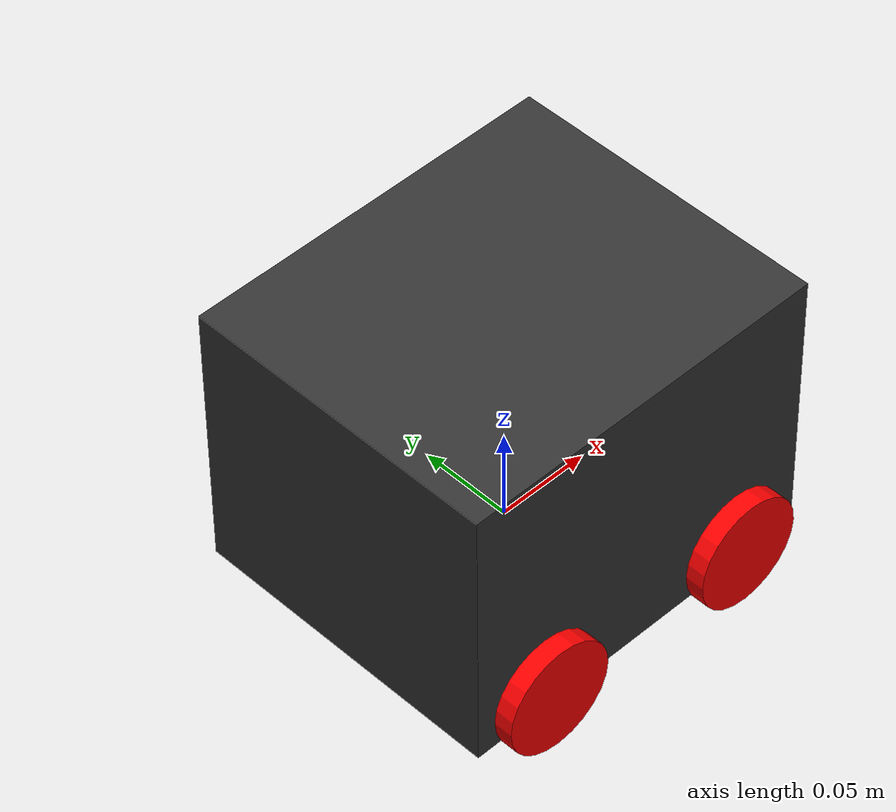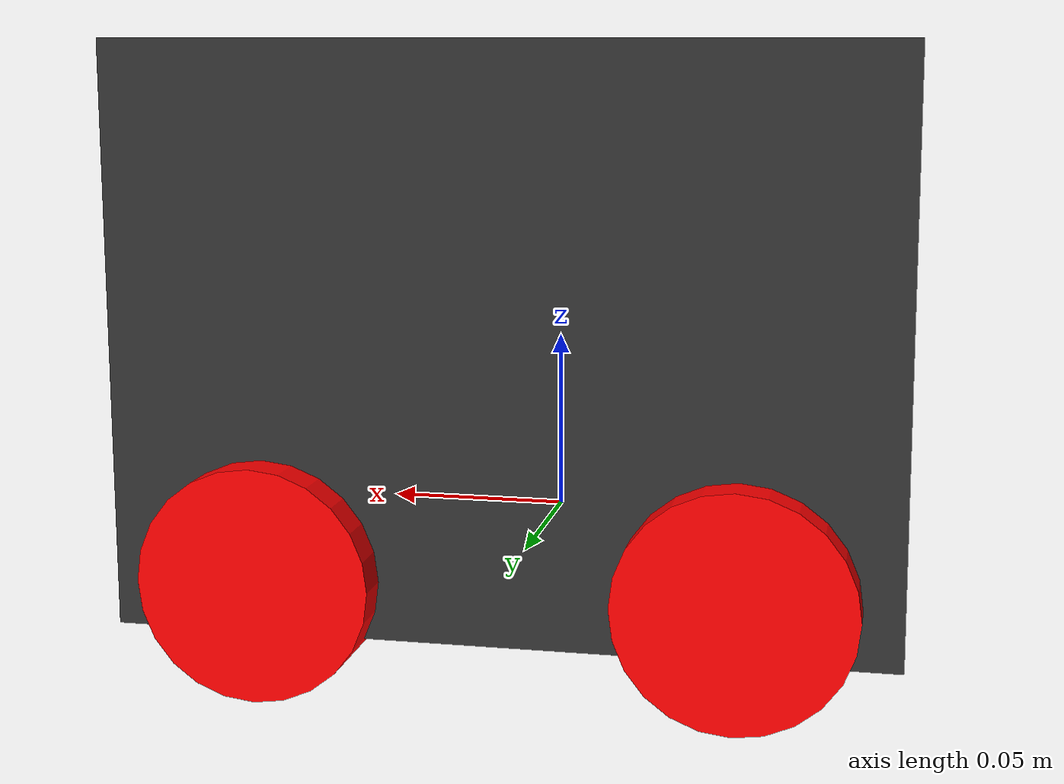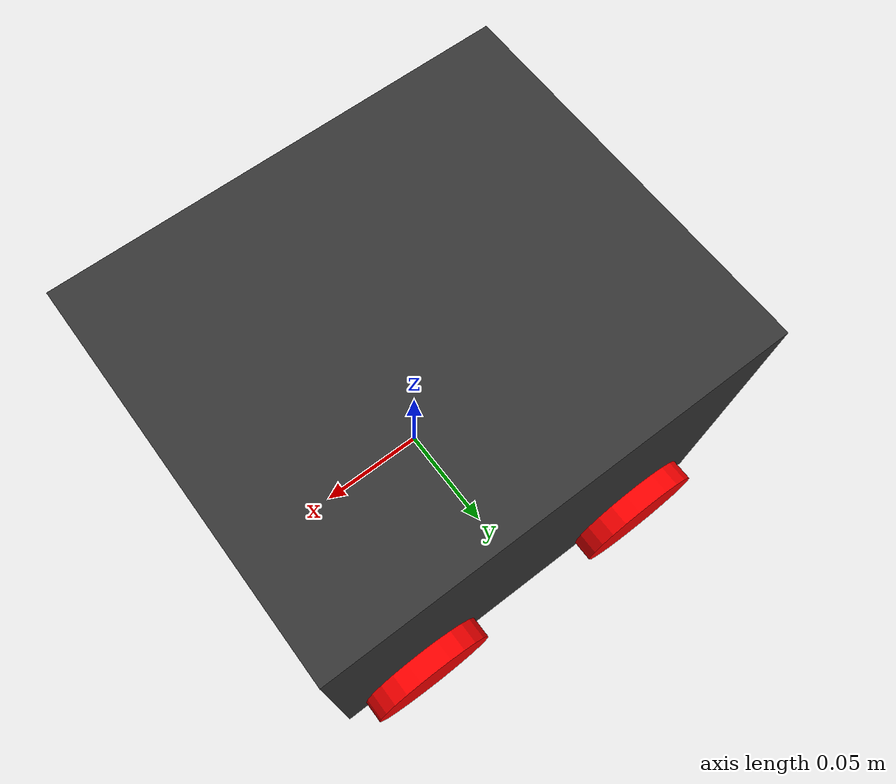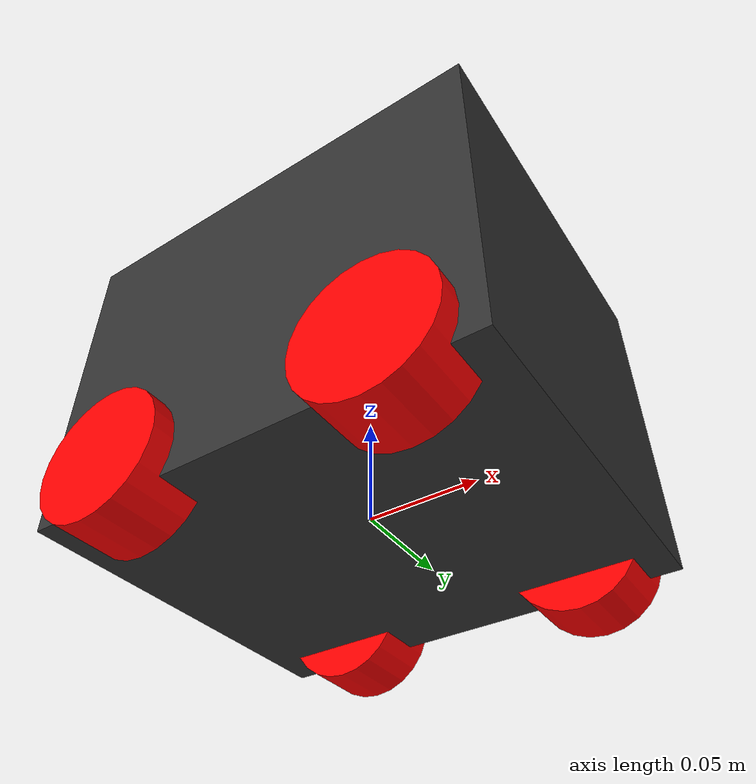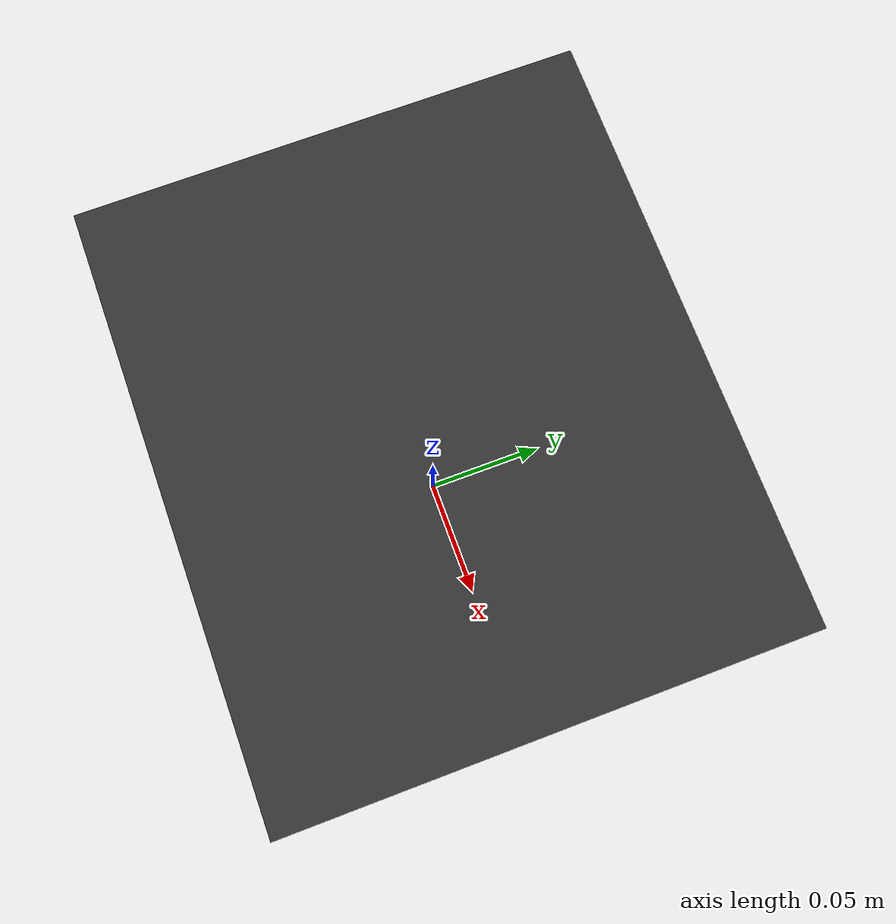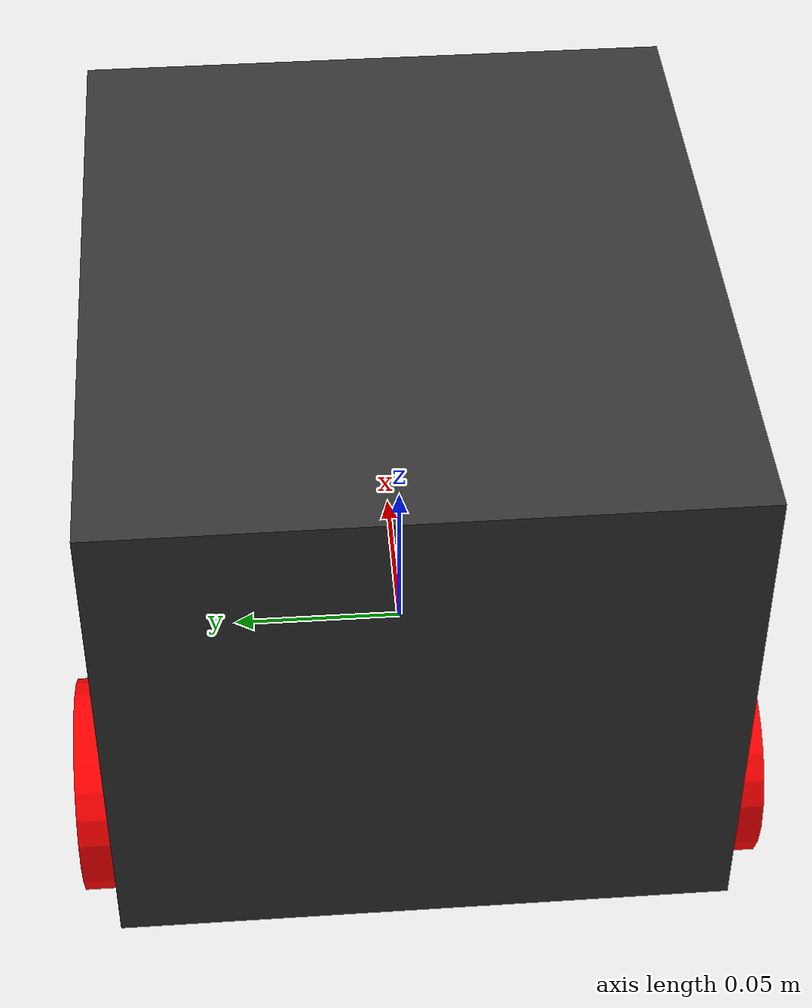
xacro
<?xml version="1.0"?>
<robot xmlns:xacro="http://www.ros.org/wiki/xacro" >

    <xacro:include filename="inertial_macros.xacro"/>

    <xacro:property name="chassis_length" value="0.200"/>
    <xacro:property name="chassis_width" value="0.170"/>
    <xacro:property name="chassis_height" value="0.150"/>
    <xacro:property name="chassis_mass" value="1.5"/>
    <xacro:property name="wheel_radius" value="0.030"/>
    <xacro:property name="wheel_thickness" value="0.030"/>
    <xacro:property name="wheel_mass" value="0.05"/>
    <xacro:property name="wheel_offset_x" value="0.06"/>
    <xacro:property name="wheel_offset_y" value="0.08"/>
    <xacro:property name="wheel_offset_z" value="0.01"/>

    <material name="white">
        <color rgba="1 1 1 1" />
    </material>

    <material name="orange">
        <color rgba="1 0.3 0.1 1"/>
    </material>

    <material name="blue">
        <color rgba="0.2 0.2 1 1"/>
    </material>

    <material name="black">
        <color rgba="0 0 0 1"/>
    </material>

    <material name="grey">
        <color rgba="0.2 0.2 0.2 1"/>
    </material>

    <material name="red">
        <color rgba="1 0 0 1"/>
    </material>

    <!-- BASE LINK -->

    <link name="base_link">

    </link>

    <!-- BASE_FOOTPRINT LINK -->

    <joint name="base_footprint_joint" type="fixed">
        <parent link="base_link"/>
        <child link="base_footprint"/>
        <origin xyz="0 0 0" rpy="0 0 0"/>
    </joint>

    <link name="base_footprint">
    </link>

    <!-- CHASSIS LINK -->

    <joint name="chassis_joint" type="fixed">
        <parent link="base_link"/>
        <child link="chassis"/>
        <origin xyz="0 0 0.03"/>
    </joint>

    <link name="chassis">
        <visual>
            <origin xyz="0 0 0.03"/>
            <geometry>
                <box size="${chassis_length} ${chassis_width} ${chassis_height}"/>
            </geometry>
            <material name="grey"/>
        </visual>
        <collision>
            <origin xyz="${chassis_length/2} 0 ${chassis_height/2}"/>
            <geometry>
                <box size="${chassis_length} ${chassis_width} ${chassis_height}"/>
            </geometry>
        </collision>
        <xacro:inertial_box mass="0.5" x="${chassis_length}" y="${chassis_width}" z="${chassis_height}">
            <origin xyz="${chassis_length/2} 0 ${chassis_height/2}" rpy="0 0 0"/>
        </xacro:inertial_box>
    </link>

    <gazebo reference="chassis">
        <material>Gazebo/Black</material>
    </gazebo>

    <!-- FRONT LEFT WHEEL LINK -->

    <joint name="fl_wheel_joint" type="continuous">
        <parent link="base_link"/>
        <child link="fl_wheel"/>
        <origin xyz="${wheel_offset_x} ${wheel_offset_y} 0" rpy="-${pi/2} 0 0" />
        <axis xyz="0 0 1"/>
    </joint>

    <link name="fl_wheel">
        <visual>
            <geometry>
                <cylinder radius="${wheel_radius}" length="${wheel_thickness}"/>
            </geometry>
            <material name="red"/>
        </visual>
        <collision>
            <geometry>
                <sphere radius="${wheel_radius}"/>
            </geometry>
        </collision>
        <xacro:inertial_cylinder mass="${wheel_mass}" length="${wheel_thickness}" radius="${wheel_radius}">
            <origin xyz="0 0 0" rpy="0 0 0"/>
        </xacro:inertial_cylinder>
    </link>

    <gazebo reference="fl_wheel">
        <material>Gazebo/Red</material>
    </gazebo>

    <!-- REAR LEFT WHEEL LINK -->

    <joint name="rl_wheel_joint" type="continuous">
        <parent link="base_link"/>
        <child link="rl_wheel"/>
        <origin xyz="-${wheel_offset_x} ${wheel_offset_y} 0" rpy="-${pi/2} 0 0" />
        <axis xyz="0 0 1"/>
    </joint>

    <link name="rl_wheel">
        <visual>
            <geometry>
                <cylinder radius="${wheel_radius}" length="${wheel_thickness}"/>
            </geometry>
            <material name="red"/>
        </visual>
        <collision>
            <geometry>
                <sphere radius="${wheel_radius}"/>
            </geometry>
        </collision>
        <xacro:inertial_cylinder mass="${wheel_mass}" length="${wheel_thickness}" radius="${wheel_radius}">
            <origin xyz="0 0 0" rpy="0 0 0"/>
        </xacro:inertial_cylinder>
    </link>

    <gazebo reference="rl_wheel">
        <material>Gazebo/Red</material>
    </gazebo>

    <!-- FRONT RIGHT WHEEL LINK -->

    <joint name="fr_wheel_joint" type="continuous">
        <parent link="base_link"/>
        <child link="fr_wheel"/>
        <origin xyz="${wheel_offset_x} ${-wheel_offset_y} 0" rpy="${pi/2} 0 0" />
        <axis xyz="0 0 -1"/>
    </joint>

    <link name="fr_wheel">
        <visual>
            <geometry>
                <cylinder radius="${wheel_radius}" length="${wheel_thickness}"/>
            </geometry>
            <material name="red"/>
        </visual>
        <collision>
            <geometry>
                <sphere radius="${wheel_radius}"/>
            </geometry>
        </collision>
        <xacro:inertial_cylinder mass="${wheel_mass}" length="${wheel_thickness}" radius="${wheel_radius}">
            <origin xyz="0 0 0" rpy="0 0 0"/>
        </xacro:inertial_cylinder>
    </link>

    <gazebo reference="fr_wheel">
        <material>Gazebo/Red</material>
    </gazebo>

    <!-- REAR RIGHT WHEEL LINK -->

    <joint name="rr_wheel_joint" type="continuous">
        <parent link="base_link"/>
        <child link="rr_wheel"/>
        <origin xyz="-${wheel_offset_x} ${-wheel_offset_y} 0" rpy="${pi/2} 0 0" />
        <axis xyz="0 0 -1"/>
    </joint>

    <link name="rr_wheel">
        <visual>
            <geometry>
                <cylinder radius="${wheel_radius}" length="${wheel_thickness}"/>
            </geometry>
            <material name="red"/>
        </visual>
        <collision>
            <geometry>
                <sphere radius="${wheel_radius}"/>
            </geometry>
        </collision>
        <xacro:inertial_cylinder mass="${wheel_mass}" length="${wheel_thickness}" radius="${wheel_radius}">
            <origin xyz="0 0 0" rpy="0 0 0"/>
        </xacro:inertial_cylinder>
    </link>

    <gazebo reference="rr_wheel">
        <material>Gazebo/Red</material>
    </gazebo>

</robot>
